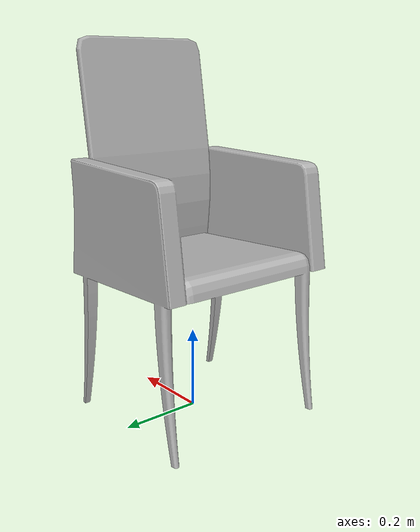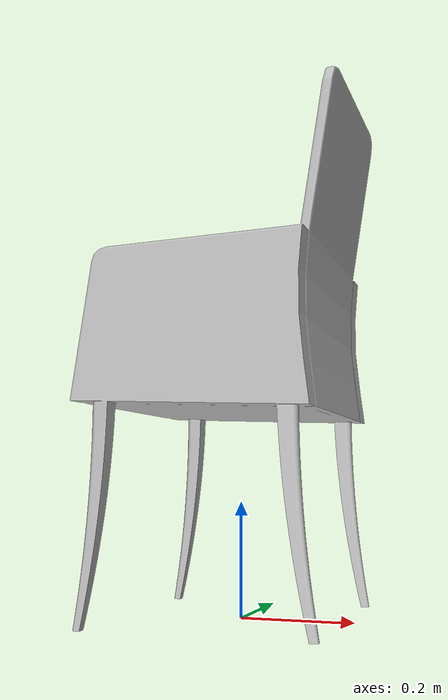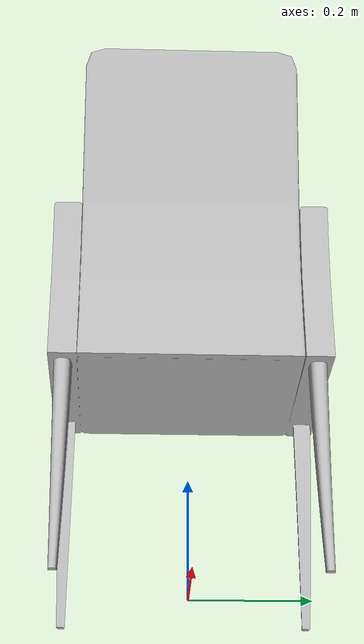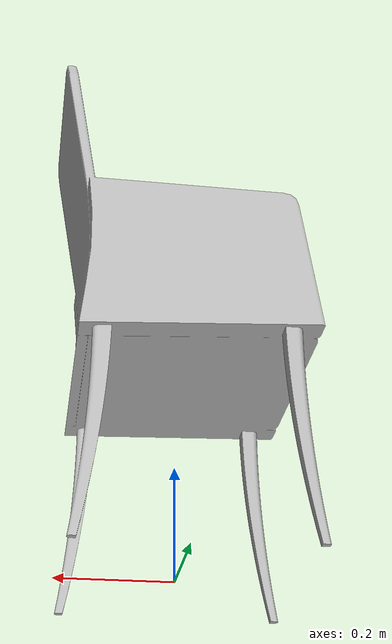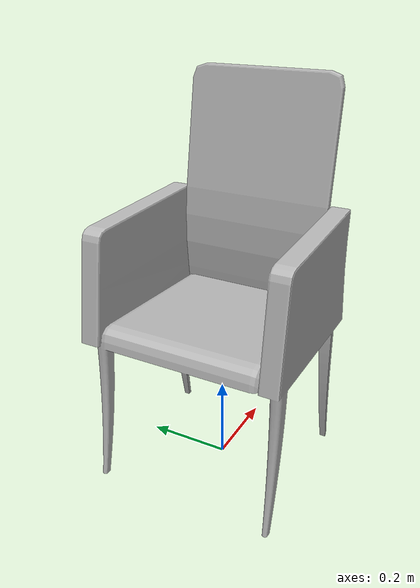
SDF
<?xml version="1.0"?>
<sdf version="1.6">
  <model name="aws_robomaker_residential_ChairA_01">
    <link name="link_ChairA_01">
      <inertial>
        <mass>7.5</mass>
        <inertia>
          <ixy>0</ixy>
          <ixz>0</ixz>
          <iyz>0</iyz>
          <ixx>0.217</ixx>
          <iyy>0.217</iyy>
          <izz>0.067</izz>
        </inertia>
      </inertial>
      <collision name="collision">
        <geometry>
          <mesh>
            <uri>model://aws_robomaker_residential_ChairA_01/meshes/aws_ChairA_01_collision.DAE</uri>
            <scale>1 1 1</scale>
          </mesh>
        </geometry>
      </collision>
      <visual name="visual">
        <geometry>
          <mesh>
            <uri>model://aws_robomaker_residential_ChairA_01/meshes/aws_ChairA_01_visual.DAE</uri>
          </mesh>
        </geometry>
        <meta>
          <layer> 1 </layer>
        </meta>
      </visual>
    </link>
  </model>
</sdf>
